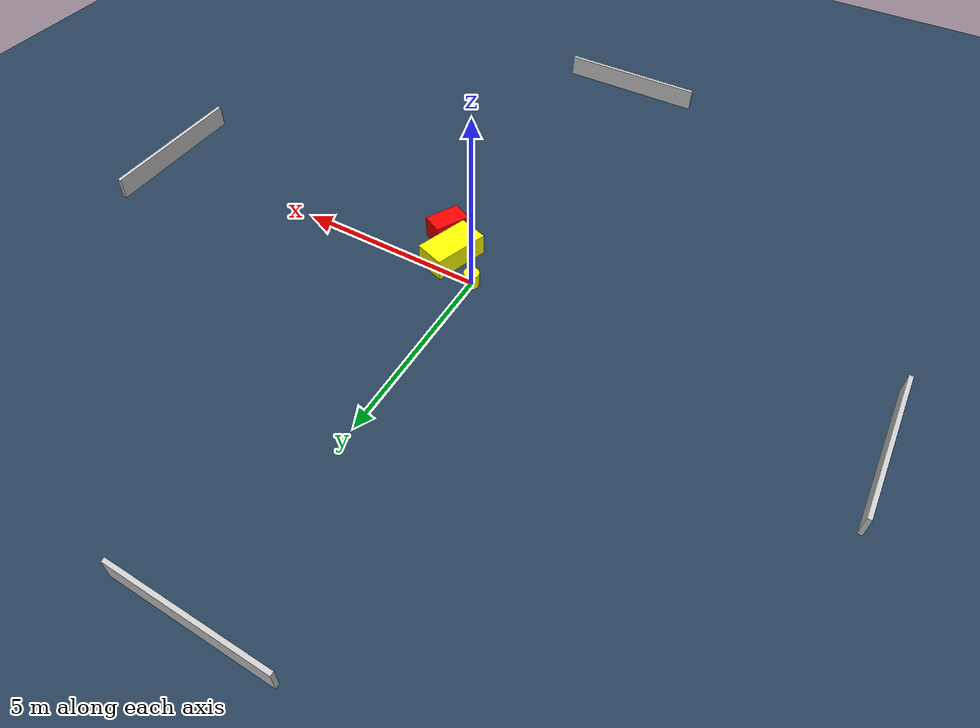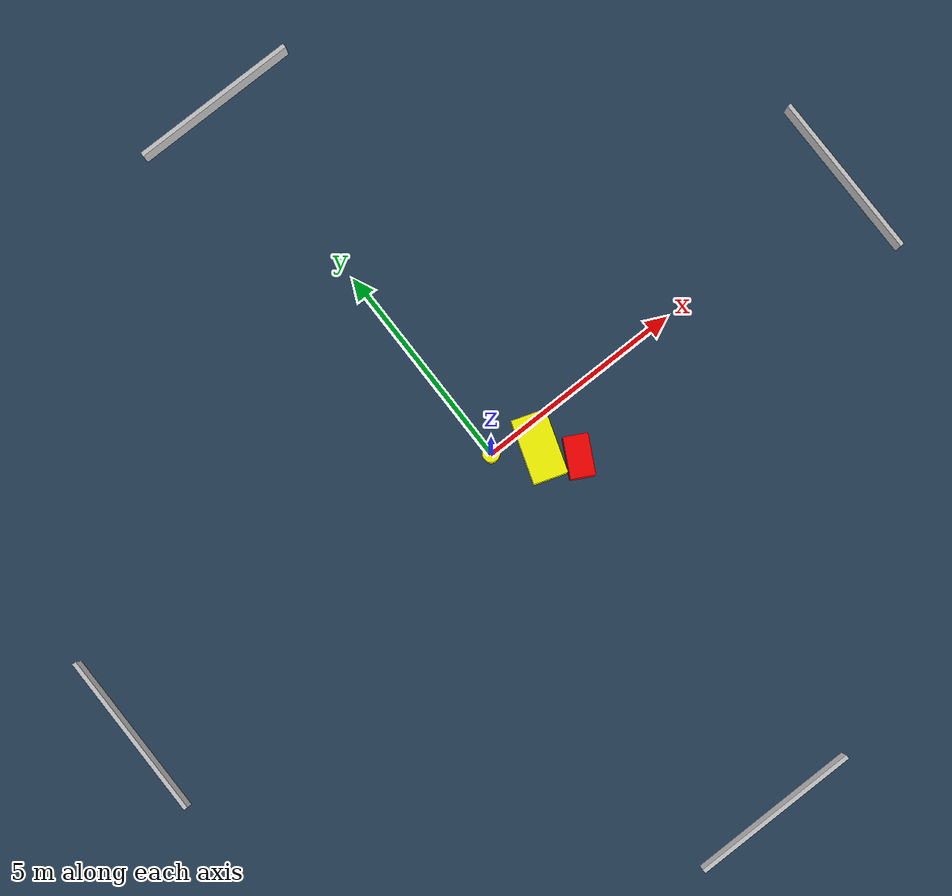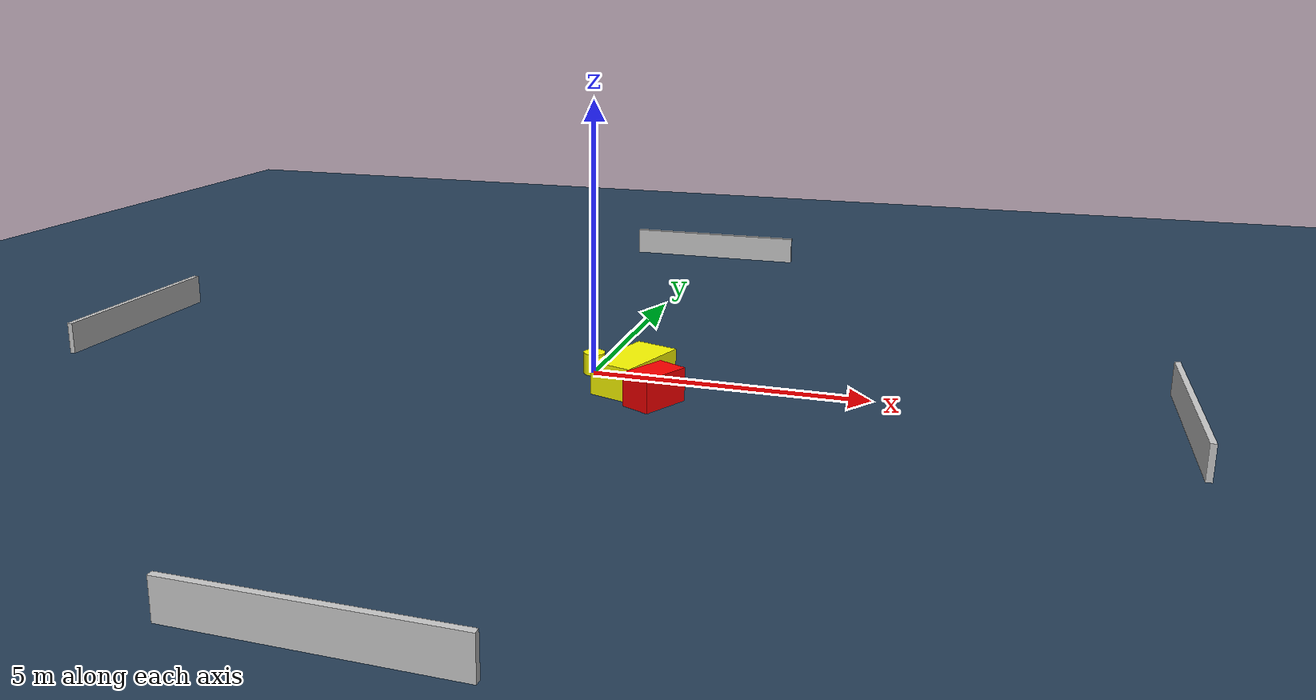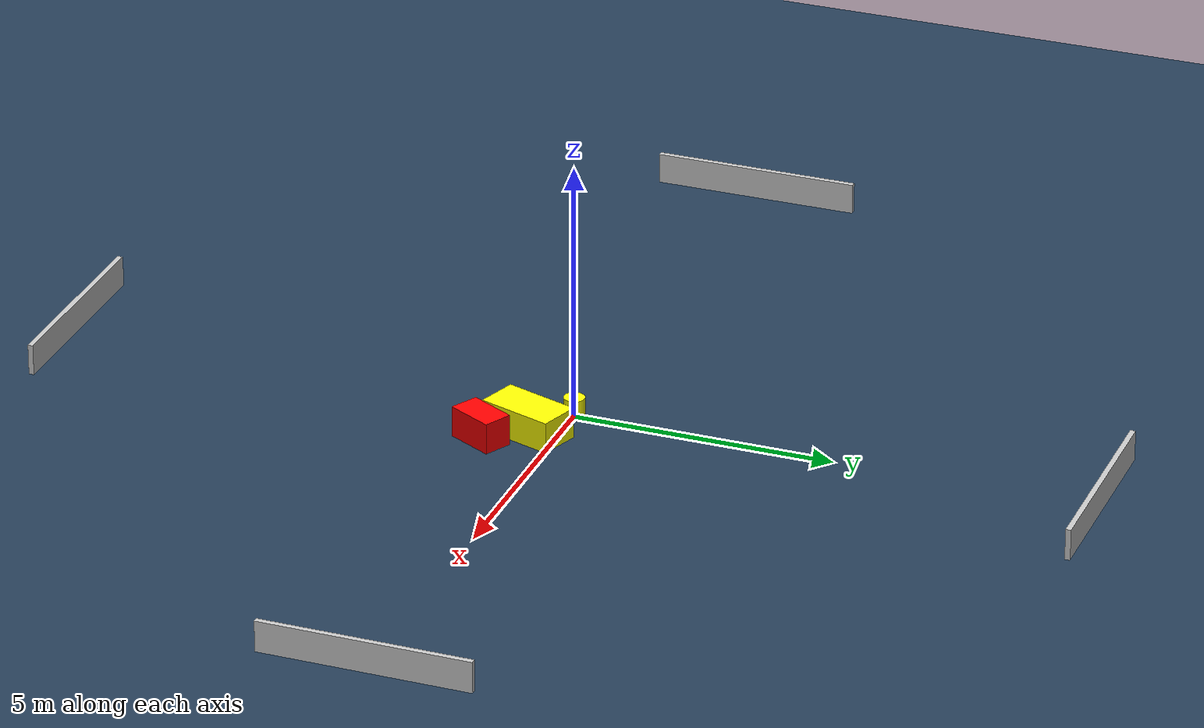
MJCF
<?xml version="1.0" ?>
<mujoco model="generated_environment">
  <option timestep="0.01" integrator="RK4" cone="elliptic"/>
  <default>
    <geom density="1"/>
  </default>
  <asset>
    <texture builtin="gradient" height="3072" name="skybox" rgb1="0.3 0.5 0.7" rgb2="0 0 0" type="skybox" width="512"/>
    <texture builtin="checker" height="300" name="groundplane" rgb1="0.2 0.3 0.4" rgb2="0.1 0.2 0.3" type="2d" width="300"/>
    <material name="groundplane" reflectance="0.2" texrepeat="5 5" texture="groundplane"/>
  </asset>
  <worldbody>
    <light dir="0 0 -1" directional="true" pos="0 0 1.5"/>
    <geom condim="3" friction="0.5 0.005 0.001" material="groundplane" name="floor" pos="0 0 0" size="0 0 0.05" type="plane"/>
    <body name="walls">
      <geom name="wall_1" condim="4" pos="-10.0 0.0 0.3" rgba="0.800000011920929 0.800000011920929 0.800000011920929 1.0" size="0.05 2.0 0.3" type="box"/>
      <geom name="wall_2" condim="4" pos="10.0 0.0 0.3" rgba="0.800000011920929 0.800000011920929 0.800000011920929 1.0" size="0.05 2.0 0.3" type="box"/>
      <geom name="wall_3" condim="4" pos="0.0 -10.0 0.3" rgba="0.800000011920929 0.800000011920929 0.800000011920929 1.0" size="2.0 0.05 0.3" type="box"/>
      <geom name="wall_4" condim="4" pos="0.0 10.0 0.3" rgba="0.800000011920929 0.800000011920929 0.800000011920929 1.0" size="2.0 0.05 0.3" type="box"/>
    </body>
    <body name="robot">
      <joint name="joint_x" type="slide" pos="0 0 0" axis="1 0 0"/>
      <joint name="joint_y" type="slide" pos="0 0 0" axis="0 1 0"/>
      <geom name="robot" type="cylinder" pos="0.0 0.0 0.2" size="0.2 0.2 0.0" mass="5.0" friction="1.0 0.005 0.0001" condim="4" rgba="1.0 1.0 0.0 1.0"/>
    </body>
    <body name="obstacle_1_movable">
      <geom name="obstacle_1_movable" condim="4" pos="0.9158354877152565 -0.5502651152370691 0.3" euler="0 0 71.61121790114036" friction="0.0 0.005 0.001" rgba="1.0 1.0 0.0 1.0" size="0.742606564273667 0.40239507855943246 0.3" type="box" mass="0.1"/>
      <joint type="free"/>
    </body>
    <body name="obstacle_2_static">
      <geom name="obstacle_2_static" condim="4" pos="1.4738753748197089 -1.2501043206800009 0.3" euler="0 0 332.1993089023256" friction="0.0 0.005 0.001" rgba="1.0 0.0 0.0 1.0" size="0.2834437677023188 0.4731425519387059 0.3" type="box"/>
    </body>
  </worldbody>
  <actuator>
    <motor name="actuator_x" joint="joint_x" gear="1" ctrlrange="-1 1"/>
    <motor name="actuator_y" joint="joint_y" gear="1" ctrlrange="-1 1"/>
  </actuator>
</mujoco>
